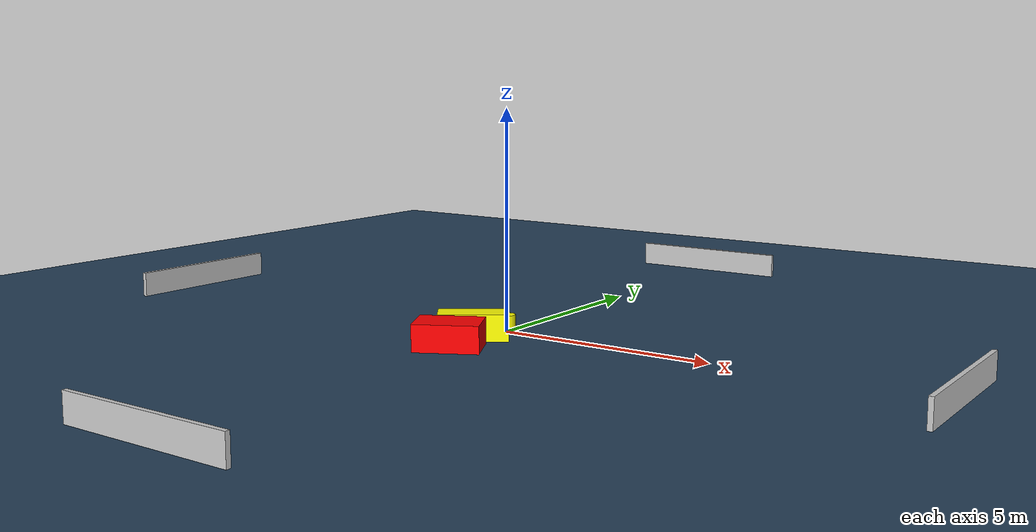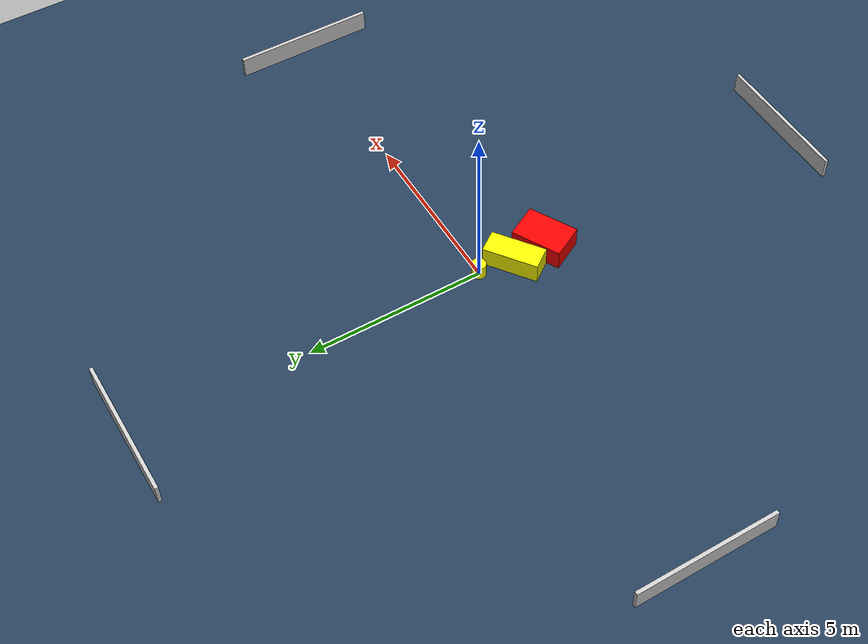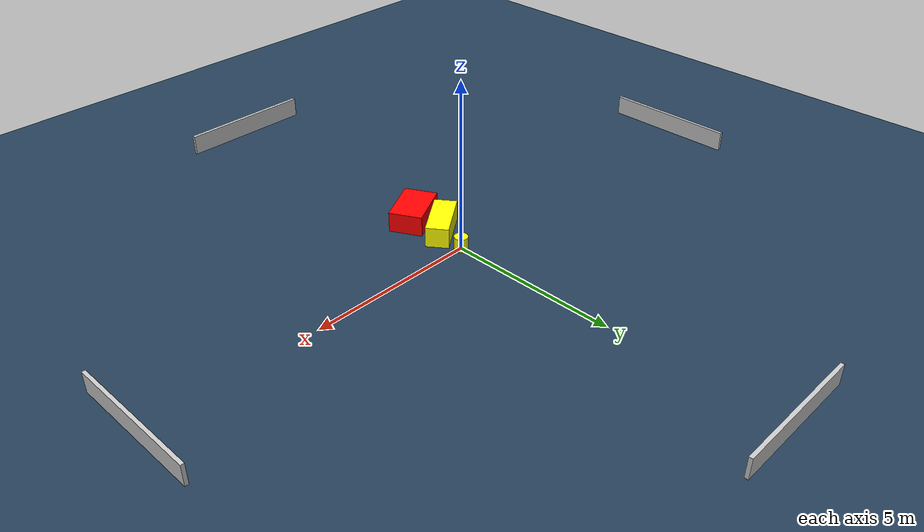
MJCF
<?xml version="1.0" ?>
<mujoco model="generated_environment">
  <option timestep="0.01" integrator="RK4" cone="elliptic"/>
  <default>
    <geom density="1"/>
  </default>
  <asset>
    <texture builtin="gradient" height="3072" name="skybox" rgb1="0.3 0.5 0.7" rgb2="0 0 0" type="skybox" width="512"/>
    <texture builtin="checker" height="300" name="groundplane" rgb1="0.2 0.3 0.4" rgb2="0.1 0.2 0.3" type="2d" width="300"/>
    <material name="groundplane" reflectance="0.2" texrepeat="5 5" texture="groundplane"/>
  </asset>
  <worldbody>
    <light dir="0 0 -1" directional="true" pos="0 0 1.5"/>
    <geom condim="3" friction="0.5 0.005 0.001" material="groundplane" name="floor" pos="0 0 0" size="0 0 0.05" type="plane"/>
    <body name="walls">
      <geom name="wall_1" condim="4" pos="-10.0 0.0 0.3" rgba="0.800000011920929 0.800000011920929 0.800000011920929 1.0" size="0.05 2.0 0.3" type="box"/>
      <geom name="wall_2" condim="4" pos="10.0 0.0 0.3" rgba="0.800000011920929 0.800000011920929 0.800000011920929 1.0" size="0.05 2.0 0.3" type="box"/>
      <geom name="wall_3" condim="4" pos="0.0 -10.0 0.3" rgba="0.800000011920929 0.800000011920929 0.800000011920929 1.0" size="2.0 0.05 0.3" type="box"/>
      <geom name="wall_4" condim="4" pos="0.0 10.0 0.3" rgba="0.800000011920929 0.800000011920929 0.800000011920929 1.0" size="2.0 0.05 0.3" type="box"/>
    </body>
    <body name="robot">
      <joint name="joint_x" type="slide" pos="0 0 0" axis="1 0 0"/>
      <joint name="joint_y" type="slide" pos="0 0 0" axis="0 1 0"/>
      <geom name="robot" type="cylinder" pos="0.0 0.0 0.2" size="0.2 0.2 0.0" mass="5.0" friction="1.0 0.005 0.0001" condim="4" rgba="1.0 1.0 0.0 1.0"/>
    </body>
    <body name="obstacle_1_movable">
      <geom name="obstacle_1_movable" condim="4" pos="-0.2056785117103001 -0.9704811832629227 0.3" euler="0 0 125.86834184059144" friction="0.0 0.005 0.001" rgba="1.0 1.0 0.0 1.0" size="0.32938745491185517 0.776755043845988 0.3" type="box" mass="0.1"/>
      <joint type="free"/>
    </body>
    <body name="obstacle_2_static">
      <geom name="obstacle_2_static" condim="4" pos="-0.08367641814840378 -1.9851248467702323 0.3" euler="0 0 27.88320560713413" friction="0.0 0.005 0.001" rgba="1.0 0.0 0.0 1.0" size="0.7178899864774617 0.48872672788942223 0.3" type="box"/>
    </body>
  </worldbody>
  <actuator>
    <motor name="actuator_x" joint="joint_x" gear="1" ctrlrange="-1 1"/>
    <motor name="actuator_y" joint="joint_y" gear="1" ctrlrange="-1 1"/>
  </actuator>
</mujoco>
